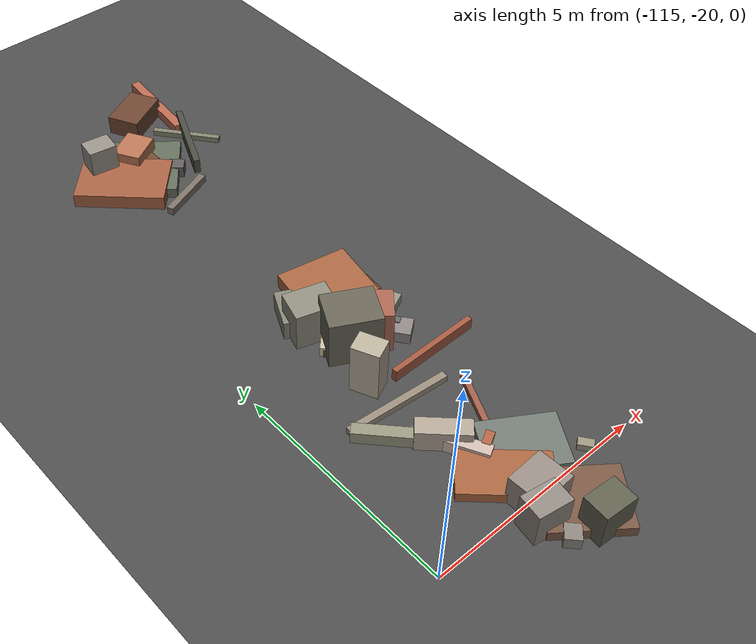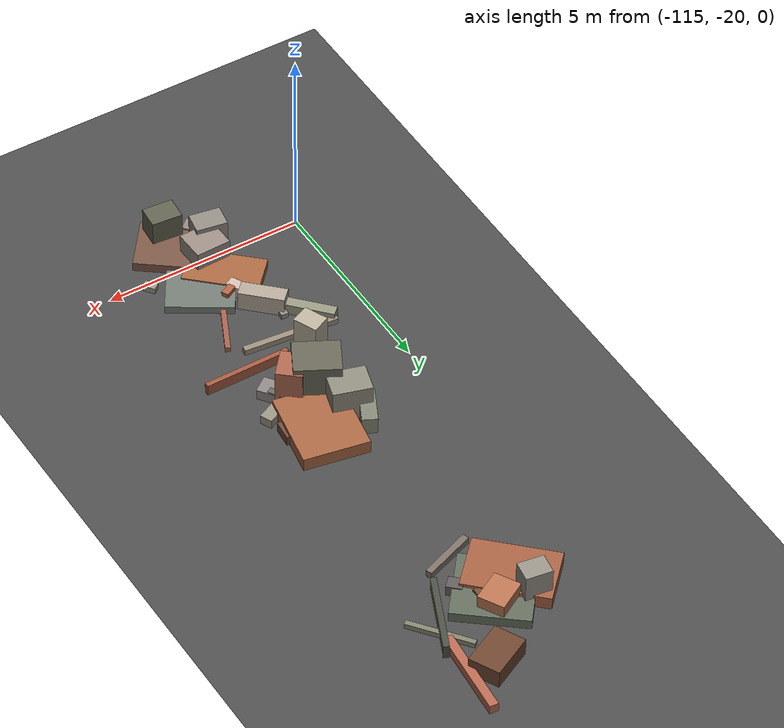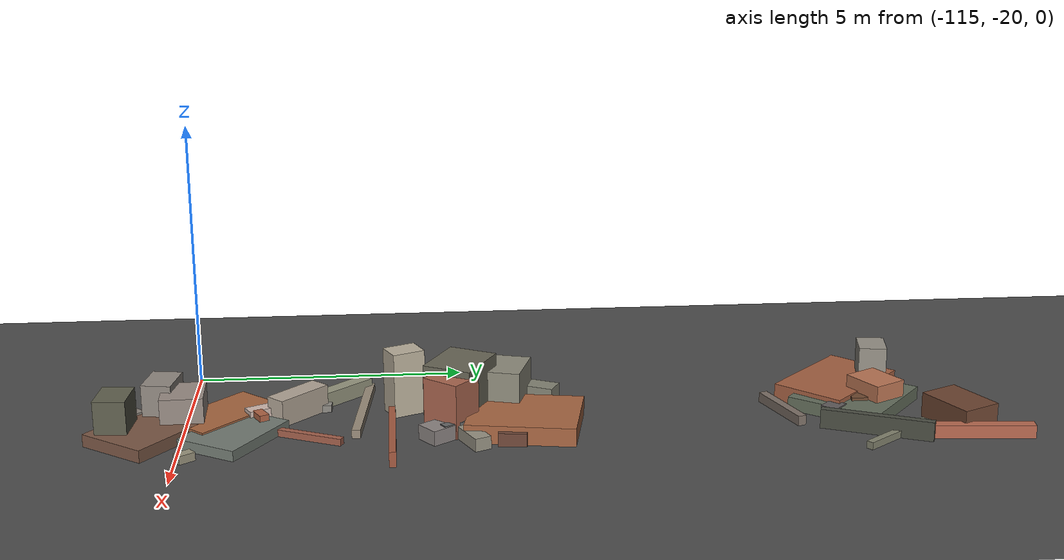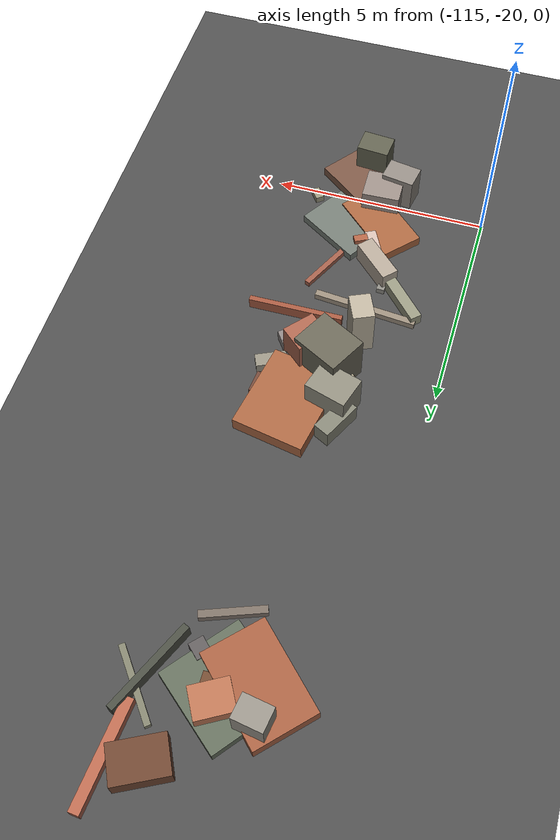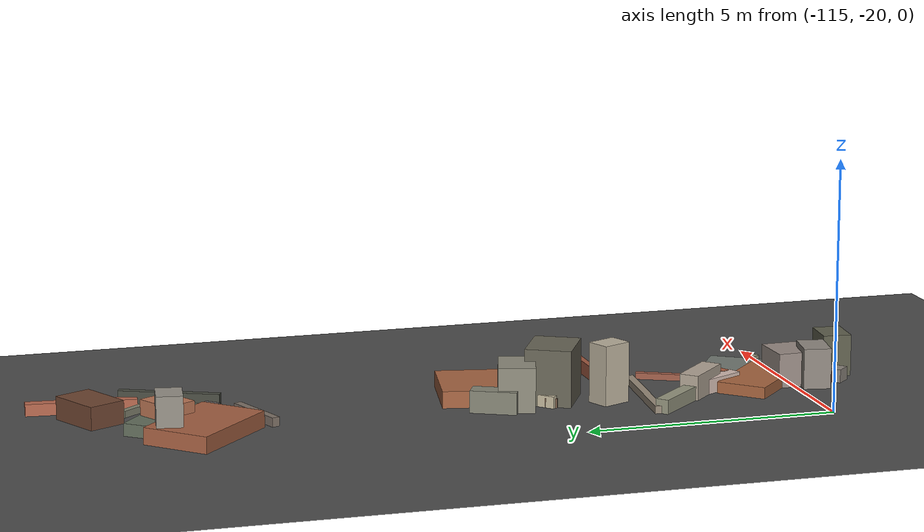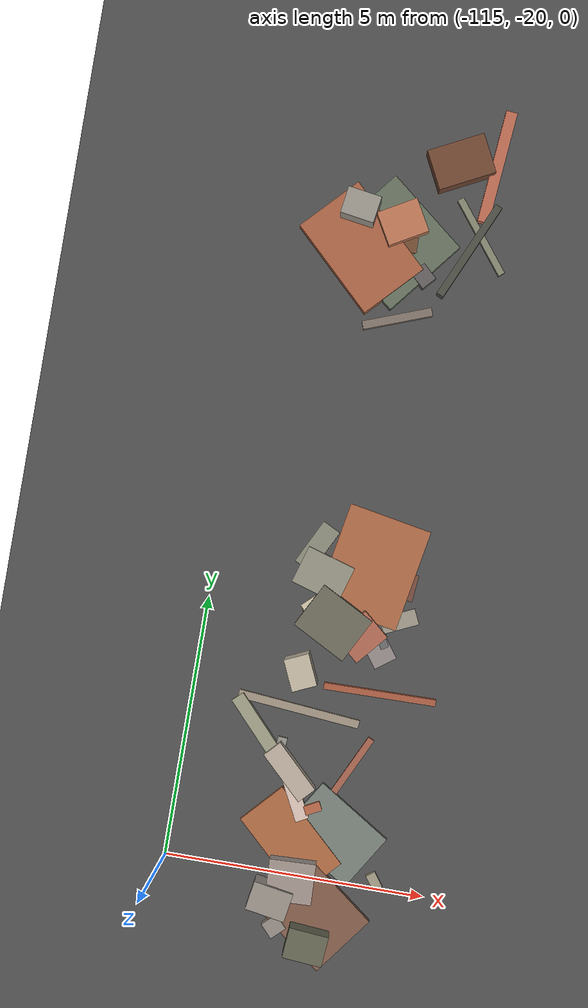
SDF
<sdf version="1.6">
 <world name="navitas_arena">
  <model name="ground_plane">
   <static>true</static>
   <link name="link">
    <collision name="collision">
     <geometry><plane><normal>0 0 1</normal><size>400 400</size></plane></geometry>
     <surface><friction><ode><mu>0.800</mu><mu2>0.800</mu2></ode></friction></surface>
    </collision>
    <visual name="visual">
     <cast_shadows>false</cast_shadows>
     <geometry><plane><normal>0 0 1</normal><size>400 400</size></plane></geometry>
     <material>
      <specular>0.04 0.04 0.04 1</specular>
      <script>
       <uri>file://media/materials/scripts/navitas_asphalt.material</uri>
       <name>Navitas/RealArenaAsphalt</name>
      </script>
     </material>
    </visual>
   </link>
  </model>
  <model name="deb_kolay_25">
   <static>true</static>
   <pose>-111.649 -6.637 0.000 0 0 0</pose>
   <link name="link">
    <collision name="col_0">
     <pose>-0.891 -0.730 0.284 0.000 0.000 -1.054</pose>
     <geometry><box><size>0.666 0.809 0.567</size></box></geometry>
    </collision>
    <visual name="vis_0">
     <pose>-0.891 -0.730 0.284 0.000 0.000 -1.054</pose>
     <geometry><box><size>0.666 0.809 0.567</size></box></geometry>
     <material>
      <ambient>0.68 0.42 0.31 1</ambient>
      <diffuse>0.73 0.46 0.33 1</diffuse>
      <specular>0.05 0.05 0.045 1</specular>
     </material>
    </visual>
    <collision name="col_1">
     <pose>0.635 -0.691 0.068 0.000 0.000 -0.906</pose>
     <geometry><box><size>1.640 0.132 0.136</size></box></geometry>
    </collision>
    <visual name="vis_1">
     <pose>0.635 -0.691 0.068 0.000 0.000 -0.906</pose>
     <geometry><box><size>1.640 0.132 0.136</size></box></geometry>
     <material>
      <ambient>0.47 0.47 0.40 1</ambient>
      <diffuse>0.51 0.51 0.43 1</diffuse>
      <specular>0.05 0.05 0.045 1</specular>
     </material>
    </visual>
    <collision name="col_2">
     <pose>0.018 0.604 0.232 0.000 0.000 0.468</pose>
     <geometry><box><size>1.125 0.779 0.464</size></box></geometry>
    </collision>
    <visual name="vis_2">
     <pose>0.018 0.604 0.232 0.000 0.000 0.468</pose>
     <geometry><box><size>1.125 0.779 0.464</size></box></geometry>
     <material>
      <ambient>0.39 0.25 0.18 1</ambient>
      <diffuse>0.43 0.27 0.19 1</diffuse>
      <specular>0.05 0.05 0.045 1</specular>
     </material>
    </visual>
    <collision name="col_3">
     <pose>0.448 -1.024 0.180 0.000 0.000 1.151</pose>
     <geometry><box><size>2.027 0.144 0.360</size></box></geometry>
    </collision>
    <visual name="vis_3">
     <pose>0.448 -1.024 0.180 0.000 0.000 1.151</pose>
     <geometry><box><size>2.027 0.144 0.360</size></box></geometry>
     <material>
      <ambient>0.27 0.28 0.24 1</ambient>
      <diffuse>0.29 0.30 0.26 1</diffuse>
      <specular>0.05 0.05 0.045 1</specular>
     </material>
    </visual>
    <collision name="col_4">
     <pose>0.716 0.659 0.120 0.000 0.000 1.481</pose>
     <geometry><box><size>2.174 0.219 0.241</size></box></geometry>
    </collision>
    <visual name="vis_4">
     <pose>0.716 0.659 0.120 0.000 0.000 1.481</pose>
     <geometry><box><size>2.174 0.219 0.241</size></box></geometry>
     <material>
      <ambient>0.67 0.38 0.29 1</ambient>
      <diffuse>0.72 0.41 0.31 1</diffuse>
      <specular>0.05 0.05 0.045 1</specular>
     </material>
    </visual>
   </link>
  </model>
  <model name="deb_kolay_91">
   <static>true</static>
   <pose>-112.151 -18.801 0.000 0 0 0</pose>
   <link name="link">
    <collision name="col_0">
     <pose>-0.519 -0.537 0.115 0.000 0.000 2.391</pose>
     <geometry><box><size>1.845 1.009 0.231</size></box></geometry>
    </collision>
    <visual name="vis_0">
     <pose>-0.519 -0.537 0.115 0.000 0.000 2.391</pose>
     <geometry><box><size>1.845 1.009 0.231</size></box></geometry>
     <material>
      <ambient>0.61 0.37 0.23 1</ambient>
      <diffuse>0.66 0.40 0.25 1</diffuse>
      <specular>0.05 0.05 0.045 1</specular>
     </material>
    </visual>
    <collision name="col_1">
     <pose>-0.214 0.164 0.155 0.000 0.000 3.620</pose>
     <geometry><box><size>0.322 0.179 0.310</size></box></geometry>
    </collision>
    <visual name="vis_1">
     <pose>-0.214 0.164 0.155 0.000 0.000 3.620</pose>
     <geometry><box><size>0.322 0.179 0.310</size></box></geometry>
     <material>
      <ambient>0.64 0.36 0.25 1</ambient>
      <diffuse>0.69 0.39 0.27 1</diffuse>
      <specular>0.05 0.05 0.045 1</specular>
     </material>
    </visual>
    <collision name="col_2">
     <pose>0.201 0.652 0.064 0.000 0.000 4.264</pose>
     <geometry><box><size>2.187 0.128 0.129</size></box></geometry>
    </collision>
    <visual name="vis_2">
     <pose>0.201 0.652 0.064 0.000 0.000 4.264</pose>
     <geometry><box><size>2.187 0.128 0.129</size></box></geometry>
     <material>
      <ambient>0.59 0.34 0.27 1</ambient>
      <diffuse>0.63 0.37 0.29 1</diffuse>
      <specular>0.05 0.05 0.045 1</specular>
     </material>
    </visual>
    <collision name="col_3">
     <pose>-0.092 -0.576 0.094 0.000 0.000 4.011</pose>
     <geometry><box><size>0.339 0.471 0.188</size></box></geometry>
    </collision>
    <visual name="vis_3">
     <pose>-0.092 -0.576 0.094 0.000 0.000 4.011</pose>
     <geometry><box><size>0.339 0.471 0.188</size></box></geometry>
     <material>
      <ambient>0.40 0.28 0.19 1</ambient>
      <diffuse>0.43 0.31 0.20 1</diffuse>
      <specular>0.05 0.05 0.045 1</specular>
     </material>
    </visual>
    <collision name="col_4">
     <pose>0.273 -0.283 0.097 0.000 0.000 2.582</pose>
     <geometry><box><size>1.628 1.208 0.194</size></box></geometry>
    </collision>
    <visual name="vis_4">
     <pose>0.273 -0.283 0.097 0.000 0.000 2.582</pose>
     <geometry><box><size>1.628 1.208 0.194</size></box></geometry>
     <material>
      <ambient>0.42 0.44 0.42 1</ambient>
      <diffuse>0.45 0.48 0.45 1</diffuse>
      <specular>0.05 0.05 0.045 1</specular>
     </material>
    </visual>
    <collision name="col_5">
     <pose>-0.632 0.409 0.151 0.000 0.000 2.047</pose>
     <geometry><box><size>1.122 0.261 0.301</size></box></geometry>
    </collision>
    <visual name="vis_5">
     <pose>-0.632 0.409 0.151 0.000 0.000 2.047</pose>
     <geometry><box><size>1.122 0.261 0.301</size></box></geometry>
     <material>
      <ambient>0.76 0.68 0.64 1</ambient>
      <diffuse>0.82 0.73 0.69 1</diffuse>
      <specular>0.05 0.05 0.045 1</specular>
     </material>
    </visual>
   </link>
  </model>
  <model name="deb_kolay_98">
   <static>true</static>
   <pose>-112.559 -8.021 0.000 0 0 0</pose>
   <link name="link">
    <collision name="col_0">
     <pose>-0.175 0.287 0.153 0.000 0.000 0.014</pose>
     <geometry><box><size>1.089 0.302 0.306</size></box></geometry>
    </collision>
    <visual name="vis_0">
     <pose>-0.175 0.287 0.153 0.000 0.000 0.014</pose>
     <geometry><box><size>1.089 0.302 0.306</size></box></geometry>
     <material>
      <ambient>0.40 0.27 0.18 1</ambient>
      <diffuse>0.44 0.29 0.19 1</diffuse>
      <specular>0.05 0.05 0.045 1</specular>
     </material>
    </visual>
    <collision name="col_1">
     <pose>-0.099 0.285 0.125 0.000 0.000 -0.676</pose>
     <geometry><box><size>1.836 1.780 0.250</size></box></geometry>
    </collision>
    <visual name="vis_1">
     <pose>-0.099 0.285 0.125 0.000 0.000 -0.676</pose>
     <geometry><box><size>1.836 1.780 0.250</size></box></geometry>
     <material>
      <ambient>0.37 0.39 0.33 1</ambient>
      <diffuse>0.39 0.43 0.36 1</diffuse>
      <specular>0.05 0.05 0.045 1</specular>
     </material>
    </visual>
    <collision name="col_2">
     <pose>-0.810 0.778 0.473 0.000 0.000 1.420</pose>
     <geometry><box><size>0.512 0.652 0.946</size></box></geometry>
    </collision>
    <visual name="vis_2">
     <pose>-0.810 0.778 0.473 0.000 0.000 1.420</pose>
     <geometry><box><size>0.512 0.652 0.946</size></box></geometry>
     <material>
      <ambient>0.55 0.53 0.49 1</ambient>
      <diffuse>0.59 0.57 0.53 1</diffuse>
      <specular>0.05 0.05 0.045 1</specular>
     </material>
    </visual>
    <collision name="col_3">
     <pose>-0.677 0.082 0.168 0.000 0.000 -0.766</pose>
     <geometry><box><size>2.073 1.393 0.335</size></box></geometry>
    </collision>
    <visual name="vis_3">
     <pose>-0.677 0.082 0.168 0.000 0.000 -0.766</pose>
     <geometry><box><size>2.073 1.393 0.335</size></box></geometry>
     <material>
      <ambient>0.60 0.35 0.24 1</ambient>
      <diffuse>0.65 0.38 0.26 1</diffuse>
      <specular>0.05 0.05 0.045 1</specular>
     </material>
    </visual>
    <collision name="col_4">
     <pose>0.222 -1.122 0.092 0.000 0.000 0.358</pose>
     <geometry><box><size>1.354 0.160 0.184</size></box></geometry>
    </collision>
    <visual name="vis_4">
     <pose>0.222 -1.122 0.092 0.000 0.000 0.358</pose>
     <geometry><box><size>1.354 0.160 0.184</size></box></geometry>
     <material>
      <ambient>0.46 0.40 0.37 1</ambient>
      <diffuse>0.49 0.44 0.40 1</diffuse>
      <specular>0.05 0.05 0.045 1</specular>
     </material>
    </visual>
    <collision name="col_5">
     <pose>0.578 -0.249 0.137 0.000 0.000 0.821</pose>
     <geometry><box><size>0.320 0.367 0.274</size></box></geometry>
    </collision>
    <visual name="vis_5">
     <pose>0.578 -0.249 0.137 0.000 0.000 0.821</pose>
     <geometry><box><size>0.320 0.367 0.274</size></box></geometry>
     <material>
      <ambient>0.35 0.33 0.33 1</ambient>
      <diffuse>0.38 0.36 0.36 1</diffuse>
      <specular>0.05 0.05 0.045 1</specular>
     </material>
    </visual>
   </link>
  </model>
  <model name="deb_kolay_106">
   <static>true</static>
   <pose>-112.758 -13.955 0.000 0 0 0</pose>
   <link name="link">
    <collision name="col_0">
     <pose>0.171 -0.326 0.119 0.000 0.000 1.286</pose>
     <geometry><box><size>1.572 0.252 0.238</size></box></geometry>
    </collision>
    <visual name="vis_0">
     <pose>0.171 -0.326 0.119 0.000 0.000 1.286</pose>
     <geometry><box><size>1.572 0.252 0.238</size></box></geometry>
     <material>
      <ambient>0.57 0.35 0.20 1</ambient>
      <diffuse>0.62 0.38 0.22 1</diffuse>
      <specular>0.05 0.05 0.045 1</specular>
     </material>
    </visual>
    <collision name="col_1">
     <pose>-0.347 0.254 0.223 0.000 0.000 1.107</pose>
     <geometry><box><size>0.927 0.374 0.446</size></box></geometry>
    </collision>
    <visual name="vis_1">
     <pose>-0.347 0.254 0.223 0.000 0.000 1.107</pose>
     <geometry><box><size>0.927 0.374 0.446</size></box></geometry>
     <material>
      <ambient>0.48 0.48 0.43 1</ambient>
      <diffuse>0.52 0.52 0.46 1</diffuse>
      <specular>0.05 0.05 0.045 1</specular>
     </material>
    </visual>
    <collision name="col_2">
     <pose>0.034 -0.638 0.120 0.000 0.000 0.759</pose>
     <geometry><box><size>1.111 0.317 0.240</size></box></geometry>
    </collision>
    <visual name="vis_2">
     <pose>0.034 -0.638 0.120 0.000 0.000 0.759</pose>
     <geometry><box><size>1.111 0.317 0.240</size></box></geometry>
     <material>
      <ambient>0.72 0.69 0.58 1</ambient>
      <diffuse>0.78 0.74 0.63 1</diffuse>
      <specular>0.05 0.05 0.045 1</specular>
     </material>
    </visual>
    <collision name="col_3">
     <pose>0.764 0.046 0.171 0.000 0.000 1.391</pose>
     <geometry><box><size>1.993 1.618 0.341</size></box></geometry>
    </collision>
    <visual name="vis_3">
     <pose>0.764 0.046 0.171 0.000 0.000 1.391</pose>
     <geometry><box><size>1.993 1.618 0.341</size></box></geometry>
     <material>
      <ambient>0.61 0.37 0.24 1</ambient>
      <diffuse>0.66 0.40 0.26 1</diffuse>
      <specular>0.05 0.05 0.045 1</specular>
     </material>
    </visual>
    <collision name="col_4">
     <pose>-0.147 -0.249 0.450 0.000 0.000 1.281</pose>
     <geometry><box><size>0.732 0.952 0.900</size></box></geometry>
    </collision>
    <visual name="vis_4">
     <pose>-0.147 -0.249 0.450 0.000 0.000 1.281</pose>
     <geometry><box><size>0.732 0.952 0.900</size></box></geometry>
     <material>
      <ambient>0.51 0.51 0.46 1</ambient>
      <diffuse>0.56 0.55 0.49 1</diffuse>
      <specular>0.05 0.05 0.045 1</specular>
     </material>
    </visual>
   </link>
  </model>
  <model name="deb_kolay_113">
   <static>true</static>
   <pose>-112.051 -14.607 0.000 0 0 0</pose>
   <link name="link">
    <collision name="col_0">
     <pose>0.444 -0.871 0.137 0.000 0.000 2.209</pose>
     <geometry><box><size>0.515 0.463 0.274</size></box></geometry>
    </collision>
    <visual name="vis_0">
     <pose>0.444 -0.871 0.137 0.000 0.000 2.209</pose>
     <geometry><box><size>0.515 0.463 0.274</size></box></geometry>
     <material>
      <ambient>0.51 0.48 0.47 1</ambient>
      <diffuse>0.55 0.52 0.51 1</diffuse>
      <specular>0.05 0.05 0.045 1</specular>
     </material>
    </visual>
    <collision name="col_1">
     <pose>-0.401 -0.508 0.069 0.000 0.000 3.232</pose>
     <geometry><box><size>0.216 0.324 0.139</size></box></geometry>
    </collision>
    <visual name="vis_1">
     <pose>-0.401 -0.508 0.069 0.000 0.000 3.232</pose>
     <geometry><box><size>0.216 0.324 0.139</size></box></geometry>
     <material>
      <ambient>0.31 0.32 0.28 1</ambient>
      <diffuse>0.33 0.34 0.31 1</diffuse>
      <specular>0.05 0.05 0.045 1</specular>
     </material>
    </visual>
    <collision name="col_2">
     <pose>0.267 -0.330 0.146 0.000 0.000 2.099</pose>
     <geometry><box><size>1.064 0.161 0.293</size></box></geometry>
    </collision>
    <visual name="vis_2">
     <pose>0.267 -0.330 0.146 0.000 0.000 2.099</pose>
     <geometry><box><size>1.064 0.161 0.293</size></box></geometry>
     <material>
      <ambient>0.37 0.37 0.37 1</ambient>
      <diffuse>0.40 0.40 0.40 1</diffuse>
      <specular>0.05 0.05 0.045 1</specular>
     </material>
    </visual>
    <collision name="col_3">
     <pose>-0.891 -0.314 0.096 0.000 0.000 2.726</pose>
     <geometry><box><size>0.449 0.247 0.192</size></box></geometry>
    </collision>
    <visual name="vis_3">
     <pose>-0.891 -0.314 0.096 0.000 0.000 2.726</pose>
     <geometry><box><size>0.449 0.247 0.192</size></box></geometry>
     <material>
      <ambient>0.45 0.35 0.28 1</ambient>
      <diffuse>0.49 0.38 0.30 1</diffuse>
      <specular>0.05 0.05 0.045 1</specular>
     </material>
    </visual>
    <collision name="col_4">
     <pose>-0.519 -0.444 0.569 0.000 0.000 2.654</pose>
     <geometry><box><size>1.125 0.927 1.138</size></box></geometry>
    </collision>
    <visual name="vis_4">
     <pose>-0.519 -0.444 0.569 0.000 0.000 2.654</pose>
     <geometry><box><size>1.125 0.927 1.138</size></box></geometry>
     <material>
      <ambient>0.38 0.37 0.32 1</ambient>
      <diffuse>0.41 0.40 0.34 1</diffuse>
      <specular>0.05 0.05 0.045 1</specular>
     </material>
    </visual>
    <collision name="col_5">
     <pose>0.804 0.433 0.124 0.000 0.000 1.476</pose>
     <geometry><box><size>0.514 0.234 0.248</size></box></geometry>
    </collision>
    <visual name="vis_5">
     <pose>0.804 0.433 0.124 0.000 0.000 1.476</pose>
     <geometry><box><size>0.514 0.234 0.248</size></box></geometry>
     <material>
      <ambient>0.41 0.26 0.21 1</ambient>
      <diffuse>0.44 0.28 0.22 1</diffuse>
      <specular>0.05 0.05 0.045 1</specular>
     </material>
    </visual>
   </link>
  </model>
  <model name="deb_kolay_122">
   <static>true</static>
   <pose>-112.017 -20.165 0.000 0 0 0</pose>
   <link name="link">
    <collision name="col_0">
     <pose>-0.707 -0.822 0.136 0.000 0.000 0.751</pose>
     <geometry><box><size>0.347 0.326 0.272</size></box></geometry>
    </collision>
    <visual name="vis_0">
     <pose>-0.707 -0.822 0.136 0.000 0.000 0.751</pose>
     <geometry><box><size>0.347 0.326 0.272</size></box></geometry>
     <material>
      <ambient>0.51 0.48 0.45 1</ambient>
      <diffuse>0.55 0.52 0.49 1</diffuse>
      <specular>0.05 0.05 0.045 1</specular>
     </material>
    </visual>
    <collision name="col_1">
     <pose>0.014 -0.488 0.116 0.000 0.000 2.490</pose>
     <geometry><box><size>1.632 1.381 0.232</size></box></geometry>
    </collision>
    <visual name="vis_1">
     <pose>0.014 -0.488 0.116 0.000 0.000 2.490</pose>
     <geometry><box><size>1.632 1.381 0.232</size></box></geometry>
     <material>
      <ambient>0.44 0.31 0.25 1</ambient>
      <diffuse>0.48 0.34 0.27 1</diffuse>
      <specular>0.05 0.05 0.045 1</specular>
     </material>
    </visual>
    <collision name="col_2">
     <pose>1.044 0.325 0.077 0.000 0.000 0.640</pose>
     <geometry><box><size>0.195 0.319 0.154</size></box></geometry>
    </collision>
    <visual name="vis_2">
     <pose>1.044 0.325 0.077 0.000 0.000 0.640</pose>
     <geometry><box><size>0.195 0.319 0.154</size></box></geometry>
     <material>
      <ambient>0.55 0.53 0.46 1</ambient>
      <diffuse>0.60 0.58 0.49 1</diffuse>
      <specular>0.05 0.05 0.045 1</specular>
     </material>
    </visual>
    <collision name="col_3">
     <pose>-0.051 -0.992 0.424 0.000 0.000 1.486</pose>
     <geometry><box><size>0.576 0.759 0.849</size></box></geometry>
    </collision>
    <visual name="vis_3">
     <pose>-0.051 -0.992 0.424 0.000 0.000 1.486</pose>
     <geometry><box><size>0.576 0.759 0.849</size></box></geometry>
     <material>
      <ambient>0.35 0.35 0.29 1</ambient>
      <diffuse>0.38 0.38 0.31 1</diffuse>
      <specular>0.05 0.05 0.045 1</specular>
     </material>
    </visual>
    <collision name="col_4">
     <pose>-0.534 0.143 0.348 0.000 0.000 1.607</pose>
     <geometry><box><size>0.775 0.883 0.697</size></box></geometry>
    </collision>
    <visual name="vis_4">
     <pose>-0.534 0.143 0.348 0.000 0.000 1.607</pose>
     <geometry><box><size>0.775 0.883 0.697</size></box></geometry>
     <material>
      <ambient>0.55 0.51 0.48 1</ambient>
      <diffuse>0.60 0.55 0.52 1</diffuse>
      <specular>0.05 0.05 0.045 1</specular>
     </material>
    </visual>
    <collision name="col_5">
     <pose>-0.865 -0.265 0.409 0.000 0.000 1.403</pose>
     <geometry><box><size>0.548 0.768 0.818</size></box></geometry>
    </collision>
    <visual name="vis_5">
     <pose>-0.865 -0.265 0.409 0.000 0.000 1.403</pose>
     <geometry><box><size>0.548 0.768 0.818</size></box></geometry>
     <material>
      <ambient>0.53 0.50 0.47 1</ambient>
      <diffuse>0.57 0.54 0.51 1</diffuse>
      <specular>0.05 0.05 0.045 1</specular>
     </material>
    </visual>
   </link>
  </model>
  <model name="deb_kolay_144">
   <static>true</static>
   <pose>-112.121 -15.662 0.000 0 0 0</pose>
   <link name="link">
    <collision name="col_0">
     <pose>-0.898 -0.402 0.604 0.000 0.000 3.563</pose>
     <geometry><box><size>0.481 0.614 1.209</size></box></geometry>
    </collision>
    <visual name="vis_0">
     <pose>-0.898 -0.402 0.604 0.000 0.000 3.563</pose>
     <geometry><box><size>0.481 0.614 1.209</size></box></geometry>
     <material>
      <ambient>0.68 0.64 0.56 1</ambient>
      <diffuse>0.73 0.69 0.61 1</diffuse>
      <specular>0.05 0.05 0.045 1</specular>
     </material>
    </visual>
    <collision name="col_1">
     <pose>0.242 0.893 0.151 0.000 0.000 1.305</pose>
     <geometry><box><size>1.007 0.306 0.301</size></box></geometry>
    </collision>
    <visual name="vis_1">
     <pose>0.242 0.893 0.151 0.000 0.000 1.305</pose>
     <geometry><box><size>1.007 0.306 0.301</size></box></geometry>
     <material>
      <ambient>0.55 0.55 0.50 1</ambient>
      <diffuse>0.60 0.59 0.54 1</diffuse>
      <specular>0.05 0.05 0.045 1</specular>
     </material>
    </visual>
    <collision name="col_2">
     <pose>0.107 0.432 0.504 0.000 0.000 2.431</pose>
     <geometry><box><size>0.637 0.750 1.009</size></box></geometry>
    </collision>
    <visual name="vis_2">
     <pose>0.107 0.432 0.504 0.000 0.000 2.431</pose>
     <geometry><box><size>0.637 0.750 1.009</size></box></geometry>
     <material>
      <ambient>0.62 0.37 0.29 1</ambient>
      <diffuse>0.67 0.40 0.31 1</diffuse>
      <specular>0.05 0.05 0.045 1</specular>
     </material>
    </visual>
    <collision name="col_3">
     <pose>0.655 -0.621 0.141 0.000 0.000 3.154</pose>
     <geometry><box><size>2.157 0.124 0.281</size></box></geometry>
    </collision>
    <visual name="vis_3">
     <pose>0.655 -0.621 0.141 0.000 0.000 3.154</pose>
     <geometry><box><size>2.157 0.124 0.281</size></box></geometry>
     <material>
      <ambient>0.59 0.32 0.23 1</ambient>
      <diffuse>0.64 0.35 0.25 1</diffuse>
      <specular>0.05 0.05 0.045 1</specular>
     </material>
    </visual>
    <collision name="col_4">
     <pose>0.582 0.718 0.120 0.000 0.000 3.574</pose>
     <geometry><box><size>1.157 0.311 0.239</size></box></geometry>
    </collision>
    <visual name="vis_4">
     <pose>0.582 0.718 0.120 0.000 0.000 3.574</pose>
     <geometry><box><size>1.157 0.311 0.239</size></box></geometry>
     <material>
      <ambient>0.54 0.53 0.48 1</ambient>
      <diffuse>0.59 0.57 0.51 1</diffuse>
      <specular>0.05 0.05 0.045 1</specular>
     </material>
    </visual>
   </link>
  </model>
  <model name="deb_kolay_147">
   <static>true</static>
   <pose>-112.834 -17.414 0.000 0 0 0</pose>
   <link name="link">
    <collision name="col_0">
     <pose>-0.633 -0.075 0.143 0.000 0.000 2.321</pose>
     <geometry><box><size>1.957 0.265 0.286</size></box></geometry>
    </collision>
    <visual name="vis_0">
     <pose>-0.633 -0.075 0.143 0.000 0.000 2.321</pose>
     <geometry><box><size>1.957 0.265 0.286</size></box></geometry>
     <material>
      <ambient>0.54 0.54 0.47 1</ambient>
      <diffuse>0.59 0.59 0.50 1</diffuse>
      <specular>0.05 0.05 0.045 1</specular>
     </material>
    </visual>
    <collision name="col_1">
     <pose>-0.109 0.591 0.076 0.000 0.000 3.052</pose>
     <geometry><box><size>2.374 0.157 0.152</size></box></geometry>
    </collision>
    <visual name="vis_1">
     <pose>-0.109 0.591 0.076 0.000 0.000 3.052</pose>
     <geometry><box><size>2.374 0.157 0.152</size></box></geometry>
     <material>
      <ambient>0.55 0.51 0.44 1</ambient>
      <diffuse>0.60 0.55 0.48 1</diffuse>
      <specular>0.05 0.05 0.045 1</specular>
     </material>
    </visual>
    <collision name="col_2">
     <pose>-0.331 -0.209 0.068 0.000 0.000 3.077</pose>
     <geometry><box><size>0.181 0.426 0.136</size></box></geometry>
    </collision>
    <visual name="vis_2">
     <pose>-0.331 -0.209 0.068 0.000 0.000 3.077</pose>
     <geometry><box><size>0.181 0.426 0.136</size></box></geometry>
     <material>
      <ambient>0.51 0.50 0.48 1</ambient>
      <diffuse>0.55 0.54 0.51 1</diffuse>
      <specular>0.05 0.05 0.045 1</specular>
     </material>
    </visual>
    <collision name="col_3">
     <pose>-0.081 -0.594 0.250 0.000 0.000 2.373</pose>
     <geometry><box><size>1.109 0.395 0.500</size></box></geometry>
    </collision>
    <visual name="vis_3">
     <pose>-0.081 -0.594 0.250 0.000 0.000 2.373</pose>
     <geometry><box><size>1.109 0.395 0.500</size></box></geometry>
     <material>
      <ambient>0.64 0.60 0.54 1</ambient>
      <diffuse>0.70 0.65 0.59 1</diffuse>
      <specular>0.05 0.05 0.045 1</specular>
     </material>
    </visual>
   </link>
  </model>
 </world>
</sdf>
